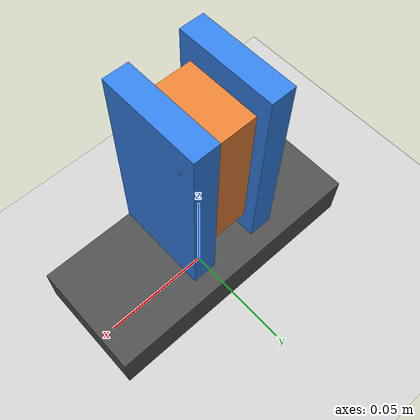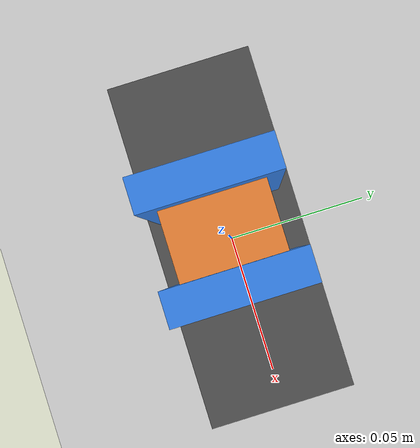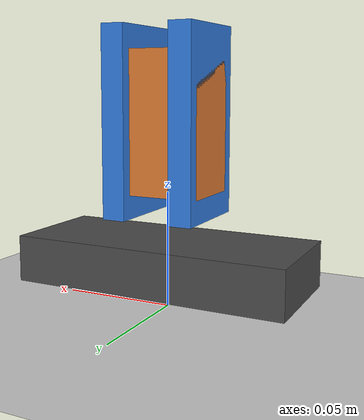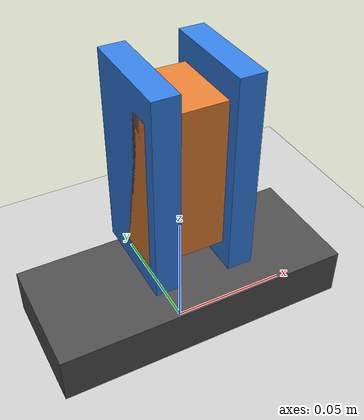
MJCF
<mujoco model="gripper small lift">
  <option timestep="0.002" gravity="0 0 -9.81"/>

  <worldbody>
    <geom name="ground" type="plane" size="0.3 0.3 0.02" rgba="0.8 0.8 0.8 1"/>

    <body name="gripper_base" pos="0 0 0.08">
      <joint name="lift_slide" type="slide" axis="0 0 1" range="-0.06 0.08" damping="20"/>
      <geom name="base_visual" type="box" size="0.06 0.025 0.01"
            pos="0 0 -0.06" mass="1" contype="0" conaffinity="0" rgba="0.3 0.3 0.3 1"/>

      <body name="left_finger" pos="-0.015 0 0">
        <joint name="left_slide" type="slide" axis="-1 0 0" range="0 0.04" damping="2"/>
        <geom name="left_finger_geom" type="box" size="0.005 0.02 0.04" mass="0.1"
              friction="2 0.005 0.0001" rgba="0.2 0.5 0.9 1"/>
      </body>

      <body name="right_finger" pos="0.015 0 0">
        <joint name="right_slide" type="slide" axis="1 0 0" range="0 0.04" damping="2"/>
        <geom name="right_finger_geom" type="box" size="0.005 0.02 0.04" mass="0.1"
              friction="2 0.005 0.0001" rgba="0.2 0.5 0.9 1"/>
      </body>
    </body>

    <body name="object" pos="0 0 0.08">
      <freejoint name="object_free"/>
      <geom name="object_geom" type="box" size="0.02 0.015 0.03" mass="0.05"
            friction="2 0.005 0.0001" rgba="0.9 0.5 0.2 1"/>
    </body>
  </worldbody>

  <actuator>
    <position name="lift_position" joint="lift_slide" kp="5000"
              ctrlrange="-0.06 0.08" forcerange="-200 200"/>
    <position name="left_position" joint="left_slide" kp="200"
              ctrlrange="0 0.04" forcerange="-10 10"/>
    <position name="right_position" joint="right_slide" kp="200"
              ctrlrange="0 0.04" forcerange="-10 10"/>
  </actuator>
</mujoco>
